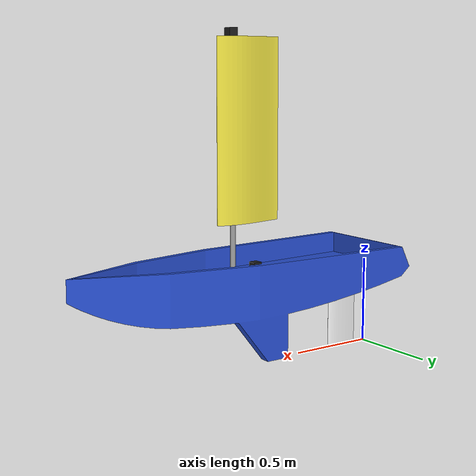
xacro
<?xml version="1.0"?>
<robot name="stintboat" xmlns:xacro="http://www.ros.org/wiki/xacro">

  <xacro:include filename="$(find stintboat_description)/urdf/stintboat.gazebo" />
  <xacro:include filename="$(find stintboat_description)/urdf/materials.xacro" />

<!-- LINKS -->
<!-- Based on format described in: https://classic.gazebosim.org/tutorials?tut=ros_urdf  -->
<!-- Inertial and origin values where taken from the Fusion360 model. -->
  <link name="dummy_link">
  </link>

<!-- Hull (Material: CFRP) -->
  <link name="base_link">
    <inertial>
      <origin xyz="0.8343461090897695 1.8476860883908343e-05 0.4324897304587565" rpy="0 0 0"/>
      <mass value="204.1612"/>
      <inertia ixx="6.489236" ixy="-0.002075" ixz="0.793396" iyy="43.15021" iyz="-0.000481" izz="47.153377"/>
    </inertial>
    <visual>
      <geometry>
        <mesh filename="package://stintboat_description/meshes/hull.dae"/>
      </geometry>
      <material name="blue"/>
      <origin xyz="0 0 0" rpy="0 0 0"/>
    </visual>
    <collision>
      <geometry>
        <mesh filename="package://stintboat_description/meshes/hull.dae"/>
      </geometry>
      <origin xyz="0 0 0" rpy="0 0 0"/>
    </collision>
  </link>

<!-- Mast (Material: Aluminum) -->
  <link name="mast_link">
    <inertial>
      <origin xyz="2.220446049250313e-16 -1.4210854715202004e-16 0.6499999999999995" rpy="0 0 0"/>
      <mass value="2.481072798172541"/>
      <inertia ixx="0.349557" ixy="0.0" ixz="0.0" iyy="0.349557" iyz="0.0" izz="0.000279"/>
    </inertial>
    <visual>
      <geometry>
        <mesh filename="package://stintboat_description/meshes/mast.dae"/>
      </geometry>
      <material name="grey"/>
      <origin xyz="-0.957 -0.0 -0.5" rpy="0 0 0"/>
    </visual>
    <collision>
      <geometry>
        <mesh filename="package://stintboat_description/meshes/mast.dae"/>
      </geometry>
      <origin xyz="-0.957 -0.0 -0.5" rpy="0 0 0"/>
    </collision>
  </link>

<!-- Sail (Material: CFRP) -->
  <link name="sail_link">
    <inertial>
      <origin xyz="-0.06425696919906199 4.753731293681053e-17 -0.5000000000000011" rpy="0 0 0"/>
      <mass value="0.021"/>
      <inertia ixx="0.02" ixy="0.0" ixz="0.0" iyy="0.02" iyz="0.0" izz="0.0"/>
    </inertial>
    <visual>
      <geometry>
        <mesh filename="package://stintboat_description/meshes/sail.dae"/>
      </geometry>
      <origin xyz="-0.957 -0.0 -1.8" rpy="0 0 0"/>
    </visual>
    <collision>
      <geometry>
        <mesh filename="package://stintboat_description/meshes/sail.dae"/>
      </geometry>
      <material name="white"/>
      <origin xyz="-0.957 -0.0 -1.8" rpy="0 0 0"/>
    </collision>
  </link>

<!-- Pole (Material: Aluminum) -->
  <link name="pole_link">
    <inertial>
      <origin xyz="-2.7755575615628914e-17 0.0 -0.25" rpy="0 0 0"/>
      <mass value="0.23856469213197484"/>
      <inertia ixx="0.004973" ixy="0.0" ixz="0.0" iyy="0.004973" iyz="0.0" izz="7e-06"/>
    </inertial>
    <visual>
      <geometry>
        <mesh filename="package://stintboat_description/meshes/pole.dae"/>
      </geometry>
      <material name="grey"/>
      <origin xyz="-0.25 -0.0 -0.5" rpy="0 0 0"/>
    </visual>
    <collision>
      <geometry>
        <mesh filename="package://stintboat_description/meshes/pole.dae"/>
        <origin xyz="-0.25 -0.0 -0.5" rpy="0 0 0"/>
      </geometry>
    </collision>
  </link>

<!-- Rudder (Material:CFRP) -->
  <link name="rudder_link">
    <inertial>
      <origin xyz="-0.0571587336123294 4.414970727608667e-17 0.1500000000000002" rpy="0 0 0"/>
      <mass value="1.3349130842340802"/>
      <inertia ixx="0.010058" ixy="0.0" ixz="0.0" iyy="0.012892" iyz="0.0" izz="0.002925"/>
    </inertial>
    <visual>
      <geometry>
        <mesh filename="package://stintboat_description/meshes/rudder.dae"/>
      </geometry>
      <material name="white"/>
      <origin xyz="-0.25 -0.0 -0.0" rpy="0 0 0"/>
    </visual>
    <collision>
      <geometry>
        <mesh filename="package://stintboat_description/meshes/rudder.dae"/>
      </geometry>
      <origin xyz="-0.25 -0.0 -0.0" rpy="0 0 0"/>
    </collision>
  </link>

<!-- Camera link -->
  <link name="camera_link">
    <collision>
      <origin xyz="0.00999 0.0 0.0182"/>
      <geometry>
        <box size="0.05 0.05 0.05"/>
      </geometry>
    </collision>
    <visual>
      <origin xyz="0.00999 0.0 0.0182" rpy="0.0 0.0 0.0"/>
      <geometry>
        <box size="0.05 0.05 0.05"/>
      </geometry>
      <material name="black"/>
    </visual>
    <inertial>
      <mass value="1e-5" />
      <origin xyz="0.00999 0 0.0182" rpy="0.0 0.0 0.0"/>
      <inertia ixx="1e-6" ixy="0" ixz="0" iyy="1e-6" iyz="0" izz="1e-6" />
    </inertial>
  </link>

<!-- IMU link -->
  <link name="imu_link">
    <collision>
      <origin xyz="0.00800 0.0 0.05"/>
      <geometry>
        <box size="0.05 0.05 0.05"/>
      </geometry>
    </collision>
    <visual>
      <origin xyz="0.00800 0.0 0.05" rpy="0.0 0.0 0.0"/>
      <geometry>
        <box size="0.05 0.05 0.05"/>
      </geometry>
      <material name="black"/>
    </visual>
    <inertial>
      <mass value="1e-5" />
      <origin xyz="0.00800 0.0 0.05" rpy="0.0 0.0 0.0"/>
      <inertia ixx="1e-6" ixy="0" ixz="0" iyy="1e-6" iyz="0" izz="1e-6" />
    </inertial>
  </link>

<!-- JOINTS -->
<!-- Based on format described in: http://wiki.ros.org/urdf/XML/joint -->
  <joint name="dummy_joint" type="fixed">
    <parent link="dummy_link"/>
    <child link="base_link"/>
  </joint>

  <joint name="base_mast_joint" type="continuous">
    <parent link="base_link"/>
    <child link="mast_link"/>
    <axis xyz="0.0 0.0 1.0"/>
    <origin xyz="0.957 0.0 0.5" rpy="0 0 0"/>
  </joint>

  <joint name="mast_sail_joint" type="fixed">
    <parent link="mast_link"/>
    <child link="sail_link"/>
    <origin xyz="0.0 0.0 1.3" rpy="0 0 0"/>
  </joint>

  <joint name="base_pole_joint" type="continuous">
    <parent link="base_link"/>
    <child link="pole_link"/>
    <axis xyz="0.0 0.0 -1.0"/>
    <origin xyz="0.25 0.0 0.5" rpy="0.0 0.0 0.0"/>
  </joint>

  <joint name="pole_rudder_joint" type="fixed">
    <parent link="pole_link"/>
    <child link="rudder_link"/>
    <origin xyz="0.0 0.0 -0.5" rpy="0.0 0.0 0.0"/>
  </joint>

  <joint name="camera_joint" type="fixed">
    <axis xyz="0.0 1.0 0.0"/>
    <origin xyz="0.0 0.0 1.3"/>
    <parent link="mast_link"/>
    <child link="camera_link"/>
  </joint>

  <joint name="imu_joint" type="fixed">
    <axis xyz="1.0 0.0 0.0"/>
    <origin xyz="0.800 0.0 0.5"/>
    <parent link="base_link"/>
    <child link="imu_link"/>
  </joint>

<!-- TRANSMISSION ELEMENTS -->
<!-- Based on format described in: https://wiki.ros.org/urdf/XML/Transmission -->
  <transmission name="sail_trans">
    <type>transmission_interface/SimpleTransmission</type>
    <joint name="base_mast_joint">
      <hardwareInterface>hardware_interface/EffortJointInterface</hardwareInterface>
    </joint>
    <actuator name="mast_motor">
      <hardwareInterface>hardware_interface/EffortJointInterface</hardwareInterface>
      <mechanicalReduction>1</mechanicalReduction>
    </actuator>
  </transmission>

  <transmission name="rudder_trans">
    <type>transmission_interface/SimpleTransmission</type>
    <joint name="base_pole_joint">
      <hardwareInterface>hardware_interface/EffortJointInterface</hardwareInterface>
    </joint>
    <actuator name="rudder_motor">
      <hardwareInterface>hardware_interface/EffortJointInterface</hardwareInterface>
      <mechanicalReduction>1</mechanicalReduction>
    </actuator>
  </transmission>

</robot>
